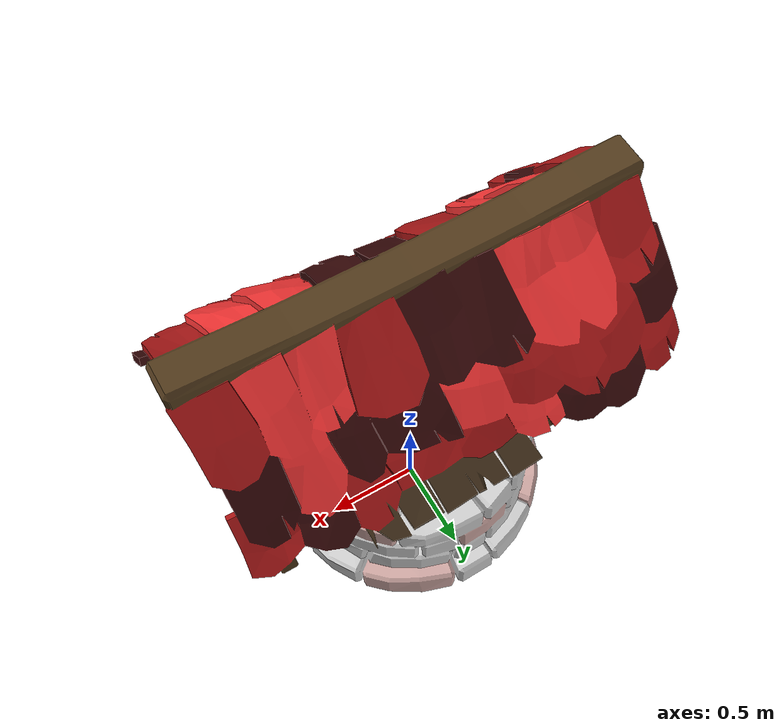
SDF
<?xml version="1.0" ?>
<sdf version="1.6">
  <model name="well">
    <static>true</static>
    <link name="link">
      <visual name="visual">
        <geometry>
          <mesh>
            <uri>file:///home/violas/.gazebo/models/well/meshes/well.dae</uri>
	    <scale>0.1 0.1 0.1</scale>
          </mesh>
        </geometry>
      </visual>
    </link>
  </model>
</sdf>
